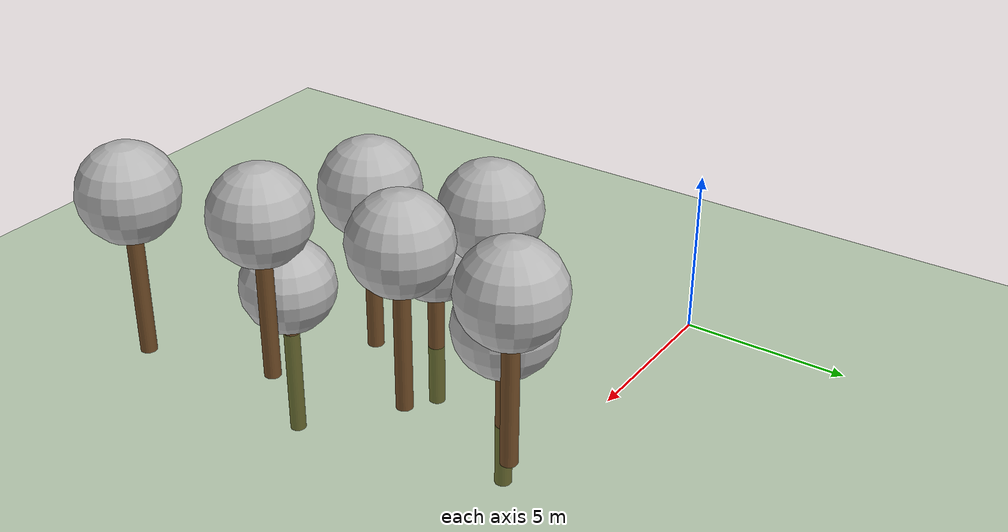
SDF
<sdf version="1.6">
 <world name="default">
  <model name="ground_plane">
   <static>1</static>
   <link name="link">
    <collision name="collision">
     <geometry><plane><normal>0 0 1</normal><size>250 250</size></plane></geometry>
     <surface><friction><ode><mu>1</mu><mu2>1</mu2></ode></friction></surface>
    </collision>
    <visual name="grass">
     <cast_shadows>0</cast_shadows>
     <geometry><plane><normal>0 0 1</normal><size>150 250</size></plane></geometry>
     <material>
      <script><uri>file://media/materials/scripts/Gazebo.material</uri><name>Gazebo/Grass</name></script>
     </material>
    </visual>
   </link>
  </model>
  <model name="tree_simple">
   <static>1</static>
   <link name="link">
    <pose>0 0 0.1 0 -0 0</pose>
    <inertial>
     <mass>666</mass>
     <inertia>
      <ixx>0.0861167</ixx>
      <ixy>0</ixy>
      <ixz>0</ixz>
      <iyy>0.0861167</iyy>
      <iyz>0</iyz>
      <izz>0.0861167</izz>
     </inertia>
    </inertial>
    <collision name="collision_trunk">
     <pose>0 0 2 0 -0 0</pose>
     <geometry><cylinder><radius>0.25</radius><length>4</length></cylinder></geometry>
     <surface>
      <contact>
       <poissons_ratio>0.347</poissons_ratio>
       <elastic_modulus>8.8e+09</elastic_modulus>
       <ode><kp>100000</kp><kd>100</kd><max_vel>100</max_vel><min_depth>0.001</min_depth></ode>
      </contact>
      <friction>
       <torsional>
        <coefficient>1</coefficient>
        <use_patch_radius>0</use_patch_radius>
        <surface_radius>0.01</surface_radius>
       </torsional>
      </friction>
     </surface>
    </collision>
    <collision name="collision_treetop">
     <pose>0 0 5.2 0 -0 0</pose>
     <geometry><sphere><radius>1.5</radius></sphere></geometry>
     <surface>
      <contact>
       <poissons_ratio>0.347</poissons_ratio>
       <elastic_modulus>8.8e+09</elastic_modulus>
       <ode><kp>100000</kp><kd>100</kd><max_vel>100</max_vel><min_depth>0.001</min_depth></ode>
      </contact>
      <friction>
       <torsional>
        <coefficient>1</coefficient>
        <use_patch_radius>0</use_patch_radius>
        <surface_radius>0.01</surface_radius>
       </torsional>
      </friction>
     </surface>
    </collision>
    <visual name="trunk">
     <pose>0 0 2 0 -0 0</pose>
     <geometry><cylinder><radius>0.25</radius><length>4</length></cylinder></geometry>
     <material>
      <script>
       <uri>model://tree_simple/scripts</uri>
       <uri>model://tree_simple/materials/textures</uri>
       <name>TreeSimple/Trunk</name>
      </script>
     </material>
    </visual>
    <visual name="treetop">
     <pose>0 0 5.2 0 -0 0</pose>
     <geometry><sphere><radius>1.5</radius></sphere></geometry>
     <material>
      <script>
       <uri>model://tree_simple/scripts</uri>
       <uri>model://tree_simple/materials/textures</uri>
       <name>TreeSimple/Treetop</name>
      </script>
     </material>
    </visual>
   </link>
   <pose>5.72189 -3.56908 0 0 -0 0</pose>
  </model>
  <model name="tree_simple_0">
   <static>1</static>
   <link name="link">
    <pose>0 0 0.1 0 -0 0</pose>
    <inertial>
     <mass>666</mass>
     <inertia>
      <ixx>0.0861167</ixx>
      <ixy>0</ixy>
      <ixz>0</ixz>
      <iyy>0.0861167</iyy>
      <iyz>0</iyz>
      <izz>0.0861167</izz>
     </inertia>
    </inertial>
    <collision name="collision_trunk">
     <pose>0 0 2 0 -0 0</pose>
     <geometry><cylinder><radius>0.25</radius><length>4</length></cylinder></geometry>
     <surface>
      <contact>
       <poissons_ratio>0.347</poissons_ratio>
       <elastic_modulus>8.8e+09</elastic_modulus>
       <ode><kp>100000</kp><kd>100</kd><max_vel>100</max_vel><min_depth>0.001</min_depth></ode>
      </contact>
      <friction>
       <torsional>
        <coefficient>1</coefficient>
        <use_patch_radius>0</use_patch_radius>
        <surface_radius>0.01</surface_radius>
       </torsional>
      </friction>
     </surface>
    </collision>
    <collision name="collision_treetop">
     <pose>0 0 5.2 0 -0 0</pose>
     <geometry><sphere><radius>1.5</radius></sphere></geometry>
     <surface>
      <contact>
       <poissons_ratio>0.347</poissons_ratio>
       <elastic_modulus>8.8e+09</elastic_modulus>
       <ode><kp>100000</kp><kd>100</kd><max_vel>100</max_vel><min_depth>0.001</min_depth></ode>
      </contact>
      <friction>
       <torsional>
        <coefficient>1</coefficient>
        <use_patch_radius>0</use_patch_radius>
        <surface_radius>0.01</surface_radius>
       </torsional>
      </friction>
     </surface>
    </collision>
    <visual name="trunk">
     <pose>0 0 2 0 -0 0</pose>
     <geometry><cylinder><radius>0.25</radius><length>4</length></cylinder></geometry>
     <material>
      <script>
       <uri>model://tree_simple/scripts</uri>
       <uri>model://tree_simple/materials/textures</uri>
       <name>TreeSimple/Trunk</name>
      </script>
     </material>
    </visual>
    <visual name="treetop">
     <pose>0 0 5.2 0 -0 0</pose>
     <geometry><sphere><radius>1.5</radius></sphere></geometry>
     <material>
      <script>
       <uri>model://tree_simple/scripts</uri>
       <uri>model://tree_simple/materials/textures</uri>
       <name>TreeSimple/Treetop</name>
      </script>
     </material>
    </visual>
   </link>
   <pose>10.5264 -12.5818 0 0 -0 0</pose>
  </model>
  <model name="tree_simple_3">
   <static>1</static>
   <link name="link">
    <pose>0 0 0.1 0 -0 0</pose>
    <inertial>
     <mass>666</mass>
     <inertia>
      <ixx>0.0861167</ixx>
      <ixy>0</ixy>
      <ixz>0</ixz>
      <iyy>0.0861167</iyy>
      <iyz>0</iyz>
      <izz>0.0861167</izz>
     </inertia>
    </inertial>
    <collision name="collision_trunk">
     <pose>0 0 2 0 -0 0</pose>
     <geometry><cylinder><radius>0.25</radius><length>4</length></cylinder></geometry>
     <surface>
      <contact>
       <poissons_ratio>0.347</poissons_ratio>
       <elastic_modulus>8.8e+09</elastic_modulus>
       <ode><kp>100000</kp><kd>100</kd><max_vel>100</max_vel><min_depth>0.001</min_depth></ode>
      </contact>
      <friction>
       <torsional>
        <coefficient>1</coefficient>
        <use_patch_radius>0</use_patch_radius>
        <surface_radius>0.01</surface_radius>
       </torsional>
      </friction>
     </surface>
    </collision>
    <collision name="collision_treetop">
     <pose>0 0 5.2 0 -0 0</pose>
     <geometry><sphere><radius>1.5</radius></sphere></geometry>
     <surface>
      <contact>
       <poissons_ratio>0.347</poissons_ratio>
       <elastic_modulus>8.8e+09</elastic_modulus>
       <ode><kp>100000</kp><kd>100</kd><max_vel>100</max_vel><min_depth>0.001</min_depth></ode>
      </contact>
      <friction>
       <torsional>
        <coefficient>1</coefficient>
        <use_patch_radius>0</use_patch_radius>
        <surface_radius>0.01</surface_radius>
       </torsional>
      </friction>
     </surface>
    </collision>
    <visual name="trunk">
     <pose>0 0 2 0 -0 0</pose>
     <geometry><cylinder><radius>0.25</radius><length>4</length></cylinder></geometry>
     <material>
      <script>
       <uri>model://tree_simple/scripts</uri>
       <uri>model://tree_simple/materials/textures</uri>
       <name>TreeSimple/Trunk</name>
      </script>
     </material>
    </visual>
    <visual name="treetop">
     <pose>0 0 5.2 0 -0 0</pose>
     <geometry><sphere><radius>1.5</radius></sphere></geometry>
     <material>
      <script>
       <uri>model://tree_simple/scripts</uri>
       <uri>model://tree_simple/materials/textures</uri>
       <name>TreeSimple/Treetop</name>
      </script>
     </material>
    </visual>
   </link>
   <pose>9.46646 -8.62281 0 0 -0 0</pose>
  </model>
  <model name="tree_simple_5">
   <static>1</static>
   <link name="link">
    <pose>0 0 0.1 0 -0 0</pose>
    <inertial>
     <mass>666</mass>
     <inertia>
      <ixx>0.0861167</ixx>
      <ixy>0</ixy>
      <ixz>0</ixz>
      <iyy>0.0861167</iyy>
      <iyz>0</iyz>
      <izz>0.0861167</izz>
     </inertia>
    </inertial>
    <collision name="collision_trunk">
     <pose>0 0 2 0 -0 0</pose>
     <geometry><cylinder><radius>0.25</radius><length>4</length></cylinder></geometry>
     <surface>
      <contact>
       <poissons_ratio>0.347</poissons_ratio>
       <elastic_modulus>8.8e+09</elastic_modulus>
       <ode><kp>100000</kp><kd>100</kd><max_vel>100</max_vel><min_depth>0.001</min_depth></ode>
      </contact>
      <friction>
       <torsional>
        <coefficient>1</coefficient>
        <use_patch_radius>0</use_patch_radius>
        <surface_radius>0.01</surface_radius>
       </torsional>
      </friction>
     </surface>
    </collision>
    <collision name="collision_treetop">
     <pose>0 0 5.2 0 -0 0</pose>
     <geometry><sphere><radius>1.5</radius></sphere></geometry>
     <surface>
      <contact>
       <poissons_ratio>0.347</poissons_ratio>
       <elastic_modulus>8.8e+09</elastic_modulus>
       <ode><kp>100000</kp><kd>100</kd><max_vel>100</max_vel><min_depth>0.001</min_depth></ode>
      </contact>
      <friction>
       <torsional>
        <coefficient>1</coefficient>
        <use_patch_radius>0</use_patch_radius>
        <surface_radius>0.01</surface_radius>
       </torsional>
      </friction>
     </surface>
    </collision>
    <visual name="trunk">
     <pose>0 0 2 0 -0 0</pose>
     <geometry><cylinder><radius>0.25</radius><length>4</length></cylinder></geometry>
     <material>
      <script>
       <uri>model://tree_simple/scripts</uri>
       <uri>model://tree_simple/materials/textures</uri>
       <name>TreeSimple/Trunk</name>
      </script>
     </material>
    </visual>
    <visual name="treetop">
     <pose>0 0 5.2 0 -0 0</pose>
     <geometry><sphere><radius>1.5</radius></sphere></geometry>
     <material>
      <script>
       <uri>model://tree_simple/scripts</uri>
       <uri>model://tree_simple/materials/textures</uri>
       <name>TreeSimple/Treetop</name>
      </script>
     </material>
    </visual>
   </link>
   <pose>9.09139 -0.673957 0 0 -0 0</pose>
  </model>
  <model name="tree_simple_8">
   <static>1</static>
   <link name="link">
    <pose>0 0 0.1 0 -0 0</pose>
    <inertial>
     <mass>666</mass>
     <inertia>
      <ixx>0.0861167</ixx>
      <ixy>0</ixy>
      <ixz>0</ixz>
      <iyy>0.0861167</iyy>
      <iyz>0</iyz>
      <izz>0.0861167</izz>
     </inertia>
    </inertial>
    <collision name="collision_trunk">
     <pose>0 0 2 0 -0 0</pose>
     <geometry><cylinder><radius>0.25</radius><length>4</length></cylinder></geometry>
     <surface>
      <contact>
       <poissons_ratio>0.347</poissons_ratio>
       <elastic_modulus>8.8e+09</elastic_modulus>
       <ode><kp>100000</kp><kd>100</kd><max_vel>100</max_vel><min_depth>0.001</min_depth></ode>
      </contact>
      <friction>
       <torsional>
        <coefficient>1</coefficient>
        <use_patch_radius>0</use_patch_radius>
        <surface_radius>0.01</surface_radius>
       </torsional>
      </friction>
     </surface>
    </collision>
    <collision name="collision_treetop">
     <pose>0 0 5.2 0 -0 0</pose>
     <geometry><sphere><radius>1.5</radius></sphere></geometry>
     <surface>
      <contact>
       <poissons_ratio>0.347</poissons_ratio>
       <elastic_modulus>8.8e+09</elastic_modulus>
       <ode><kp>100000</kp><kd>100</kd><max_vel>100</max_vel><min_depth>0.001</min_depth></ode>
      </contact>
      <friction>
       <torsional>
        <coefficient>1</coefficient>
        <use_patch_radius>0</use_patch_radius>
        <surface_radius>0.01</surface_radius>
       </torsional>
      </friction>
     </surface>
    </collision>
    <visual name="trunk">
     <pose>0 0 2 0 -0 0</pose>
     <geometry><cylinder><radius>0.25</radius><length>4</length></cylinder></geometry>
     <material>
      <script>
       <uri>model://tree_simple/scripts</uri>
       <uri>model://tree_simple/materials/textures</uri>
       <name>TreeSimple/Trunk</name>
      </script>
     </material>
    </visual>
    <visual name="treetop">
     <pose>0 0 5.2 0 -0 0</pose>
     <geometry><sphere><radius>1.5</radius></sphere></geometry>
     <material>
      <script>
       <uri>model://tree_simple/scripts</uri>
       <uri>model://tree_simple/materials/textures</uri>
       <name>TreeSimple/Treetop</name>
      </script>
     </material>
    </visual>
   </link>
   <pose>6.40844 -7.20661 0 0 -0 0</pose>
  </model>
  <model name="tree_simple_16">
   <static>1</static>
   <link name="link">
    <pose>0 0 0.1 0 -0 0</pose>
    <inertial>
     <mass>666</mass>
     <inertia>
      <ixx>0.0861167</ixx>
      <ixy>0</ixy>
      <ixz>0</ixz>
      <iyy>0.0861167</iyy>
      <iyz>0</iyz>
      <izz>0.0861167</izz>
     </inertia>
    </inertial>
    <collision name="collision_trunk">
     <pose>0 0 2 0 -0 0</pose>
     <geometry><cylinder><radius>0.25</radius><length>4</length></cylinder></geometry>
     <surface>
      <contact>
       <poissons_ratio>0.347</poissons_ratio>
       <elastic_modulus>8.8e+09</elastic_modulus>
       <ode><kp>100000</kp><kd>100</kd><max_vel>100</max_vel><min_depth>0.001</min_depth></ode>
      </contact>
      <friction>
       <torsional>
        <coefficient>1</coefficient>
        <use_patch_radius>0</use_patch_radius>
        <surface_radius>0.01</surface_radius>
       </torsional>
      </friction>
     </surface>
    </collision>
    <collision name="collision_treetop">
     <pose>0 0 5.2 0 -0 0</pose>
     <geometry><sphere><radius>1.5</radius></sphere></geometry>
     <surface>
      <contact>
       <poissons_ratio>0.347</poissons_ratio>
       <elastic_modulus>8.8e+09</elastic_modulus>
       <ode><kp>100000</kp><kd>100</kd><max_vel>100</max_vel><min_depth>0.001</min_depth></ode>
      </contact>
      <friction>
       <torsional>
        <coefficient>1</coefficient>
        <use_patch_radius>0</use_patch_radius>
        <surface_radius>0.01</surface_radius>
       </torsional>
      </friction>
     </surface>
    </collision>
    <visual name="trunk">
     <pose>0 0 2 0 -0 0</pose>
     <geometry><cylinder><radius>0.25</radius><length>4</length></cylinder></geometry>
     <material>
      <script>
       <uri>model://tree_simple/scripts</uri>
       <uri>model://tree_simple/materials/textures</uri>
       <name>TreeSimple/Trunk</name>
      </script>
     </material>
    </visual>
    <visual name="treetop">
     <pose>0 0 5.2 0 -0 0</pose>
     <geometry><sphere><radius>1.5</radius></sphere></geometry>
     <material>
      <script>
       <uri>model://tree_simple/scripts</uri>
       <uri>model://tree_simple/materials/textures</uri>
       <name>TreeSimple/Treetop</name>
      </script>
     </material>
    </visual>
   </link>
   <pose>8.59035 -4.49916 0 0 -0 0</pose>
  </model>
  <model name="tree_simple_18_clone">
   <static>1</static>
   <link name="link">
    <pose>0 0 0.1 0 -0 0</pose>
    <inertial>
     <mass>666</mass>
     <inertia>
      <ixx>0.0861167</ixx>
      <ixy>0</ixy>
      <ixz>0</ixz>
      <iyy>0.0861167</iyy>
      <iyz>0</iyz>
      <izz>0.0861167</izz>
     </inertia>
    </inertial>
    <collision name="collision_trunk">
     <pose>0 0 2 0 -0 0</pose>
     <geometry><cylinder><radius>0.25</radius><length>4</length></cylinder></geometry>
     <surface>
      <contact>
       <poissons_ratio>0.347</poissons_ratio>
       <elastic_modulus>8.8e+09</elastic_modulus>
       <ode><kp>100000</kp><kd>100</kd><max_vel>100</max_vel><min_depth>0.001</min_depth></ode>
      </contact>
      <friction>
       <torsional>
        <coefficient>1</coefficient>
        <use_patch_radius>0</use_patch_radius>
        <surface_radius>0.01</surface_radius>
       </torsional>
      </friction>
     </surface>
    </collision>
    <collision name="collision_treetop">
     <pose>0 0 5.2 0 -0 0</pose>
     <geometry><sphere><radius>1.5</radius></sphere></geometry>
     <surface>
      <contact>
       <poissons_ratio>0.347</poissons_ratio>
       <elastic_modulus>8.8e+09</elastic_modulus>
       <ode><kp>100000</kp><kd>100</kd><max_vel>100</max_vel><min_depth>0.001</min_depth></ode>
      </contact>
      <friction>
       <torsional>
        <coefficient>1</coefficient>
        <use_patch_radius>0</use_patch_radius>
        <surface_radius>0.01</surface_radius>
       </torsional>
      </friction>
     </surface>
    </collision>
    <visual name="trunk">
     <pose>0 0 2 0 -0 0</pose>
     <geometry><cylinder><radius>0.25</radius><length>4</length></cylinder></geometry>
     <material>
      <script>
       <uri>model://tree_simple/scripts</uri>
       <uri>model://tree_simple/materials/textures</uri>
       <name>TreeSimple/Trunk</name>
      </script>
     </material>
    </visual>
    <visual name="treetop">
     <pose>0 0 5.2 0 -0 0</pose>
     <geometry><sphere><radius>1.5</radius></sphere></geometry>
     <material>
      <script>
       <uri>model://tree_simple/scripts</uri>
       <uri>model://tree_simple/materials/textures</uri>
       <name>TreeSimple/Treetop</name>
      </script>
     </material>
    </visual>
   </link>
   <pose>7.58458 -1.82391 -2.094 0 -0 0</pose>
  </model>
  <model name="tree_simple_18_clone_0">
   <static>1</static>
   <link name="link">
    <pose>0 0 0.1 0 -0 0</pose>
    <inertial>
     <mass>666</mass>
     <inertia>
      <ixx>0.0861167</ixx>
      <ixy>0</ixy>
      <ixz>0</ixz>
      <iyy>0.0861167</iyy>
      <iyz>0</iyz>
      <izz>0.0861167</izz>
     </inertia>
    </inertial>
    <collision name="collision_trunk">
     <pose>0 0 2 0 -0 0</pose>
     <geometry><cylinder><radius>0.25</radius><length>4</length></cylinder></geometry>
     <surface>
      <contact>
       <poissons_ratio>0.347</poissons_ratio>
       <elastic_modulus>8.8e+09</elastic_modulus>
       <ode><kp>100000</kp><kd>100</kd><max_vel>100</max_vel><min_depth>0.001</min_depth></ode>
      </contact>
      <friction>
       <torsional>
        <coefficient>1</coefficient>
        <use_patch_radius>0</use_patch_radius>
        <surface_radius>0.01</surface_radius>
       </torsional>
      </friction>
     </surface>
    </collision>
    <collision name="collision_treetop">
     <pose>0 0 5.2 0 -0 0</pose>
     <geometry><sphere><radius>1.5</radius></sphere></geometry>
     <surface>
      <contact>
       <poissons_ratio>0.347</poissons_ratio>
       <elastic_modulus>8.8e+09</elastic_modulus>
       <ode><kp>100000</kp><kd>100</kd><max_vel>100</max_vel><min_depth>0.001</min_depth></ode>
      </contact>
      <friction>
       <torsional>
        <coefficient>1</coefficient>
        <use_patch_radius>0</use_patch_radius>
        <surface_radius>0.01</surface_radius>
       </torsional>
      </friction>
     </surface>
    </collision>
    <visual name="trunk">
     <pose>0 0 2 0 -0 0</pose>
     <geometry><cylinder><radius>0.25</radius><length>4</length></cylinder></geometry>
     <material>
      <script>
       <uri>model://tree_simple/scripts</uri>
       <uri>model://tree_simple/materials/textures</uri>
       <name>TreeSimple/Trunk</name>
      </script>
     </material>
    </visual>
    <visual name="treetop">
     <pose>0 0 5.2 0 -0 0</pose>
     <geometry><sphere><radius>1.5</radius></sphere></geometry>
     <material>
      <script>
       <uri>model://tree_simple/scripts</uri>
       <uri>model://tree_simple/materials/textures</uri>
       <name>TreeSimple/Treetop</name>
      </script>
     </material>
    </visual>
   </link>
   <pose>5.33626 -5.74594 -2.094 0 -0 0</pose>
  </model>
  <model name="tree_simple_2_clone_0">
   <static>1</static>
   <link name="link">
    <pose>0 0 0.1 0 -0 0</pose>
    <inertial>
     <mass>666</mass>
     <inertia>
      <ixx>0.0861167</ixx>
      <ixy>0</ixy>
      <ixz>0</ixz>
      <iyy>0.0861167</iyy>
      <iyz>0</iyz>
      <izz>0.0861167</izz>
     </inertia>
    </inertial>
    <collision name="collision_trunk">
     <pose>0 0 2 0 -0 0</pose>
     <geometry><cylinder><radius>0.25</radius><length>4</length></cylinder></geometry>
     <surface>
      <contact>
       <poissons_ratio>0.347</poissons_ratio>
       <elastic_modulus>8.8e+09</elastic_modulus>
       <ode><kp>100000</kp><kd>100</kd><max_vel>100</max_vel><min_depth>0.001</min_depth></ode>
      </contact>
      <friction>
       <torsional>
        <coefficient>1</coefficient>
        <use_patch_radius>0</use_patch_radius>
        <surface_radius>0.01</surface_radius>
       </torsional>
      </friction>
     </surface>
    </collision>
    <collision name="collision_treetop">
     <pose>0 0 5.2 0 -0 0</pose>
     <geometry><sphere><radius>1.5</radius></sphere></geometry>
     <surface>
      <contact>
       <poissons_ratio>0.347</poissons_ratio>
       <elastic_modulus>8.8e+09</elastic_modulus>
       <ode><kp>100000</kp><kd>100</kd><max_vel>100</max_vel><min_depth>0.001</min_depth></ode>
      </contact>
      <friction>
       <torsional>
        <coefficient>1</coefficient>
        <use_patch_radius>0</use_patch_radius>
        <surface_radius>0.01</surface_radius>
       </torsional>
      </friction>
     </surface>
    </collision>
    <visual name="trunk">
     <pose>0 0 2 0 -0 0</pose>
     <geometry><cylinder><radius>0.25</radius><length>4</length></cylinder></geometry>
     <material>
      <script>
       <uri>model://tree_simple/scripts</uri>
       <uri>model://tree_simple/materials/textures</uri>
       <name>TreeSimple/Trunk</name>
      </script>
     </material>
    </visual>
    <visual name="treetop">
     <pose>0 0 5.2 0 -0 0</pose>
     <geometry><sphere><radius>1.5</radius></sphere></geometry>
     <material>
      <script>
       <uri>model://tree_simple/scripts</uri>
       <uri>model://tree_simple/materials/textures</uri>
       <name>TreeSimple/Treetop</name>
      </script>
     </material>
    </visual>
   </link>
   <pose>7.25734 -9.82973 -3.64952 0 -0 0</pose>
  </model>
 </world>
</sdf>
